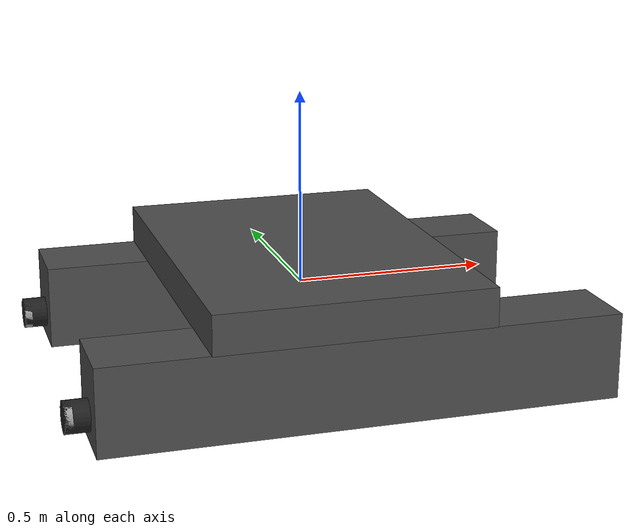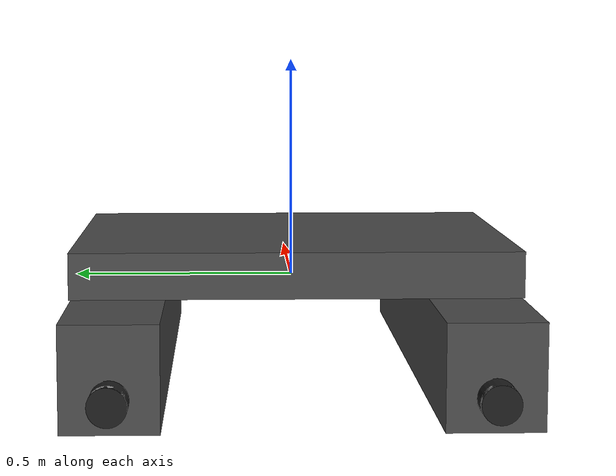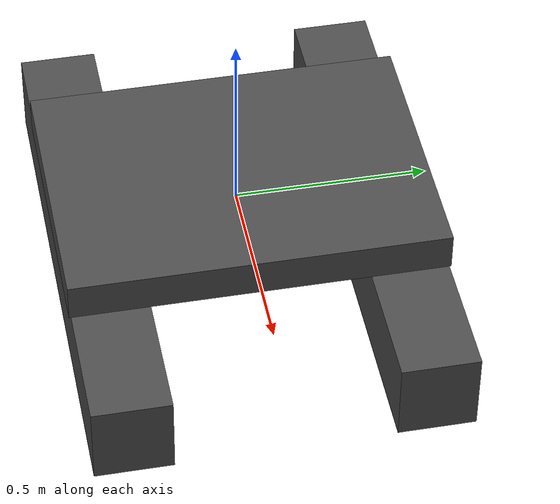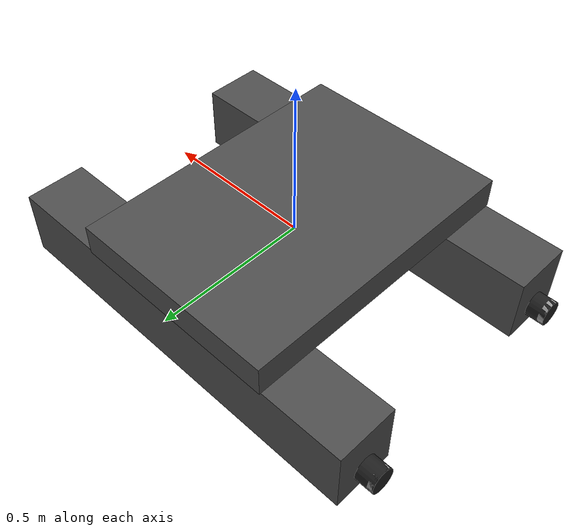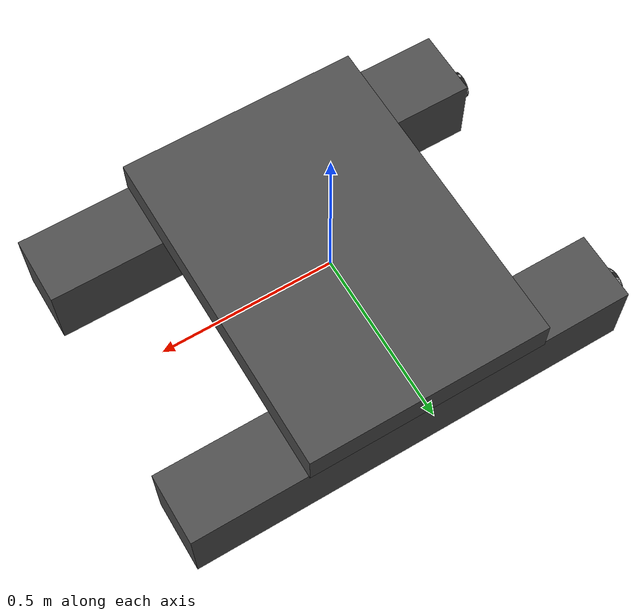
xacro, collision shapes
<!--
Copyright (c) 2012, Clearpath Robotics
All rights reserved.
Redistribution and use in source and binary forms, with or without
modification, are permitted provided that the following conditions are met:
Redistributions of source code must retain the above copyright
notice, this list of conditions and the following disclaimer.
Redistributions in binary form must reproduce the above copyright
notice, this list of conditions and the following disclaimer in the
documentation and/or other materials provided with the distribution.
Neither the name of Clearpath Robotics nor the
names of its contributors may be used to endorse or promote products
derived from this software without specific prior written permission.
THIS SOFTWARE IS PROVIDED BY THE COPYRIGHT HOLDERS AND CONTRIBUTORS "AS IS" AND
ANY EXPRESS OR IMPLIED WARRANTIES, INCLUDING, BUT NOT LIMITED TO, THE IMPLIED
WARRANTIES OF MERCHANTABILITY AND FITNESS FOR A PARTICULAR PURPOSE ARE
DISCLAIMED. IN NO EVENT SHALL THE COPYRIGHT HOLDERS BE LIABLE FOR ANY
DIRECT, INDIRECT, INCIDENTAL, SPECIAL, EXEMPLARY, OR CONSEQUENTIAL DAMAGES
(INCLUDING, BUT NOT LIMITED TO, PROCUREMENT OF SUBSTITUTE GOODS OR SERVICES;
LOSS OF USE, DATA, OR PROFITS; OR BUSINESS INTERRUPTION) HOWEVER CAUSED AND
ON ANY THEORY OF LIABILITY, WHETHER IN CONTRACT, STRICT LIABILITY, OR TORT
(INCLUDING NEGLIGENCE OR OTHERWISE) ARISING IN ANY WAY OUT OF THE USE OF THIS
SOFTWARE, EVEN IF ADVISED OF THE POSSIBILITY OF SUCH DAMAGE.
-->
<?xml version="1.0"?>
<robot xmlns:xacro="http://ros.org/wiki/xacro" name="kingfisher">
  <xacro:include filename="$(find kingfisher_description)/urdf/materials.urdf.xacro"/>
  <xacro:include filename="$(find kingfisher_description)/urdf/kingfisher_thruster.xacro"/>

  <!-- === Physical parameters (tunable) === -->
  <!-- Total mass including payload/sensors, from the IsaacLab kingfisher env. -->
  <xacro:property name="kf_mass" value="35.0"/>
  <xacro:property name="kf_com_z" value="-0.05"/>
  <!-- Box approximation of a 35 kg, 1.34 x 0.97 x 0.32 m body. -->
  <xacro:property name="kf_ixx" value="3.0"/>
  <xacro:property name="kf_iyy" value="5.5"/>
  <xacro:property name="kf_izz" value="8.0"/>
  <!-- Hull geometry used for the collision boxes. -->
  <xacro:property name="kf_hull_length" value="1.3"/>
  <xacro:property name="kf_hull_width" value="0.2"/>
  <xacro:property name="kf_hull_height" value="0.22"/>
  <xacro:property name="kf_hull_y" value="0.38"/>
  <!-- Jet thruster location (stern of each hull, just above the keel). -->
  <xacro:property name="kf_thruster_x" value="-0.60"/>
  <xacro:property name="kf_thruster_y" value="0.38"/>
  <xacro:property name="kf_thruster_z" value="-0.15"/>

  <link name="base_link">
    <!-- Hull mesh. The STL is modelled y-up / x-right, hence the rotation. -->
    <visual name="hull_visual">
      <origin xyz="0 0 0" rpy="${pi/2} 0 ${pi/2}"/>
      <geometry>
        <mesh filename="package://kingfisher_description/meshes/kingfisher_base.stl"/>
      </geometry>
      <material name="DarkGray"/>
    </visual>
    <visual name="left_panel_visual">
      <origin xyz="0 -0.35 0.05" rpy="${pi/2} 0 ${pi/2}"/>
      <geometry>
        <mesh filename="package://kingfisher_description/meshes/left_panel.stl"/>
      </geometry>
      <material name="Yellow"/>
    </visual>
    <visual name="right_panel_visual">
      <origin xyz="0 0.35 0.05" rpy="${pi/2} 0 ${-pi/2}"/>
      <geometry>
        <mesh filename="package://kingfisher_description/meshes/right_panel.stl"/>
      </geometry>
      <material name="Yellow"/>
    </visual>

    <!-- Primitive collisions: one box per hull plus the deck. -->
    <collision name="left_hull_collision">
      <origin xyz="0.03 ${kf_hull_y} ${-kf_hull_height/2}" rpy="0 0 0"/>
      <geometry>
        <box size="${kf_hull_length} ${kf_hull_width} ${kf_hull_height}"/>
      </geometry>
    </collision>
    <collision name="right_hull_collision">
      <origin xyz="0.03 ${-kf_hull_y} ${-kf_hull_height/2}" rpy="0 0 0"/>
      <geometry>
        <box size="${kf_hull_length} ${kf_hull_width} ${kf_hull_height}"/>
      </geometry>
    </collision>
    <collision name="deck_collision">
      <origin xyz="0 0 0.05" rpy="0 0 0"/>
      <geometry>
        <box size="0.7 0.97 0.1"/>
      </geometry>
    </collision>

    <inertial>
      <mass value="${kf_mass}"/>
      <origin xyz="0 0 ${kf_com_z}" rpy="0 0 0"/>
      <inertia ixx="${kf_ixx}" ixy="0" ixz="0" iyy="${kf_iyy}" iyz="0" izz="${kf_izz}"/>
    </inertial>
  </link>

  <!-- === Thrusters (fixed, differential) === -->
  <xacro:kingfisher_thruster prefix="left"
    position="${kf_thruster_x} ${kf_thruster_y} ${kf_thruster_z}"/>
  <xacro:kingfisher_thruster prefix="right"
    position="${kf_thruster_x} ${-kf_thruster_y} ${kf_thruster_z}"/>
</robot>

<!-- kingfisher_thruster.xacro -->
<robot xmlns:xacro="http://ros.org/wiki/xacro">
  <xacro:macro name="kingfisher_thruster" params="prefix position:='0 0 0' orientation:='0 0 0'">
    <xacro:property name="housing_radius" value="0.04"/>
    <xacro:property name="housing_length" value="0.16"/>
    <xacro:property name="housing_mass" value="0.5"/>
    <xacro:property name="prop_radius" value="0.04"/>
    <xacro:property name="prop_length" value="0.02"/>
    <xacro:property name="prop_mass" value="0.05"/>

    <!-- Housing (jet drive tube), aligned with the x axis -->
    <link name="${prefix}_thruster_link">
      <visual name="${prefix}_thruster_visual">
        <origin xyz="0 0 0" rpy="0 ${pi/2} 0"/>
        <geometry>
          <cylinder radius="${housing_radius}" length="${housing_length}"/>
        </geometry>
        <material name="Black"/>
      </visual>
      <collision name="${prefix}_thruster_collision">
        <origin xyz="0 0 0" rpy="0 ${pi/2} 0"/>
        <geometry>
          <cylinder radius="${housing_radius}" length="${housing_length}"/>
        </geometry>
      </collision>
      <inertial>
        <mass value="${housing_mass}"/>
        <inertia
          ixx="${(housing_mass/2) * housing_radius*housing_radius}"
          iyy="${(housing_mass/12) * (3*housing_radius*housing_radius + housing_length*housing_length)}"
          izz="${(housing_mass/12) * (3*housing_radius*housing_radius + housing_length*housing_length)}"
          ixy="0" ixz="0" iyz="0"/>
      </inertial>
    </link>

    <joint name="${prefix}_base_thruster_joint" type="fixed">
      <origin xyz="${position}" rpy="${orientation}"/>
      <parent link="base_link"/>
      <child link="${prefix}_thruster_link"/>
    </joint>

    <!-- Propeller / impeller, spins about x -->
    <link name="${prefix}_propeller_link">
      <visual name="${prefix}_propeller_visual">
        <origin xyz="0 0 0" rpy="0 ${pi/2} 0"/>
        <geometry>
          <cylinder radius="${prop_radius}" length="${prop_length}"/>
        </geometry>
        <material name="Gray"/>
      </visual>
      <collision name="${prefix}_propeller_collision">
        <origin xyz="0 0 0" rpy="0 ${pi/2} 0"/>
        <geometry>
          <cylinder radius="${prop_radius}" length="${prop_length}"/>
        </geometry>
      </collision>
      <inertial>
        <mass value="${prop_mass}"/>
        <inertia
          ixx="${(prop_mass/2) * prop_radius*prop_radius}"
          iyy="${(prop_mass/12) * (3*prop_radius*prop_radius + prop_length*prop_length)}"
          izz="${(prop_mass/12) * (3*prop_radius*prop_radius + prop_length*prop_length)}"
          ixy="0" ixz="0" iyz="0"/>
      </inertial>
    </link>

    <joint name="${prefix}_engine_propeller_joint" type="continuous">
      <axis xyz="1 0 0"/>
      <origin xyz="-0.07 0 0" rpy="0 0 0"/>
      <parent link="${prefix}_thruster_link"/>
      <child link="${prefix}_propeller_link"/>
      <!-- The Thruster plugin commands ~200 rad/s at full thrust; keep the limit above that -->
      <limit effort="100" velocity="1000"/>
      <dynamics friction="0.05" damping="0.05"/>
    </joint>
  </xacro:macro>
</robot>
